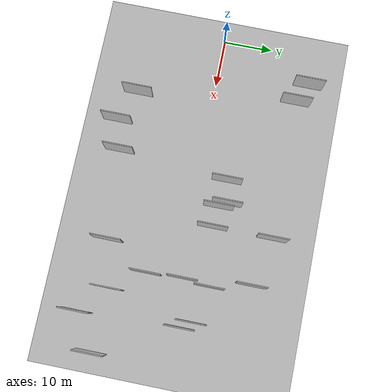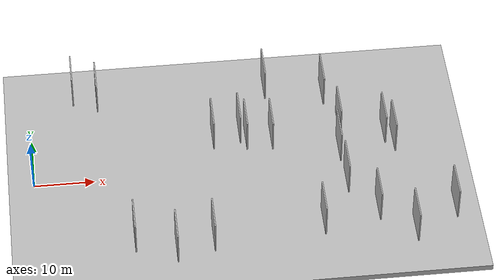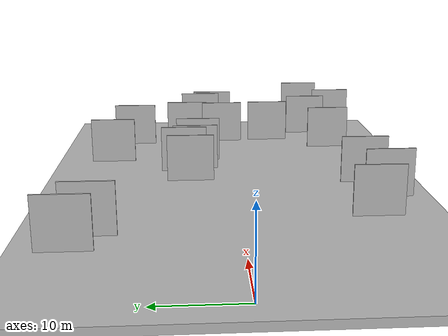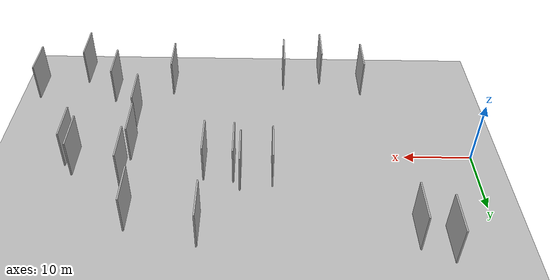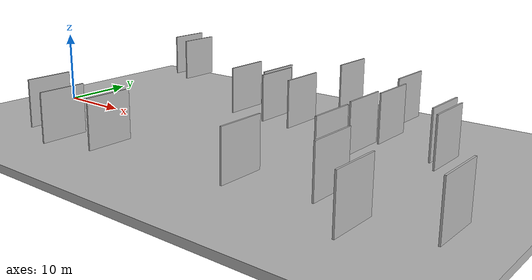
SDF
<?xml version="1.0" encoding="utf-8"?>

<sdf version="1.6">

   <world name="default">

      <gui fullscreen="0">

         <camera name="user_camera">

            <pose>-15 0 4.57585 0 0 0</pose>

            <view_controller>orbit</view_controller>

         </camera>

      </gui>

      <scene>

         <sky>

           <clouds>

             <speed>12</speed>

           </clouds>

         </sky>

         <ambient>0.4 0.4 0.4 1</ambient>

         <background>0.7 0.7 0.7 1</background>

         <shadows>1</shadows>

      </scene>

      <gravity>0 0 -9.8066</gravity>

      <magnetic_field>6e-06 2.3e-05 -4.2e-05</magnetic_field>

      <physics default="0" name="default_physics" type="ode">

         <ode>

            <solver>

               <type>quick</type>

               <iters>10</iters>

               <sor>1.0</sor>

               <use_dynamic_moi_rescaling>0</use_dynamic_moi_rescaling>

            </solver>

            <constraints>

               <cfm>0</cfm>

               <erp>0.2</erp>

               <contact_max_correcting_vel>100</contact_max_correcting_vel>

               <contact_surface_layer>0.001</contact_surface_layer>

            </constraints>

         </ode>

         <max_step_size>0.004</max_step_size>

         <real_time_factor>1</real_time_factor>

         <real_time_update_rate>250</real_time_update_rate>

      </physics>

      <light name="sun" type="directional">

         <cast_shadows>1</cast_shadows>

         <pose>0 0 10 0 0 0</pose>

         <diffuse>0.8 0.8 0.8 1</diffuse>

         <specular>0.2 0.2 0.2 1</specular>

         <attenuation>

            <range>1000</range>

            <constant>0.9</constant>

            <linear>0.01</linear>

            <quadratic>0.001</quadratic>

         </attenuation>

         <direction>-0.5 0.1 -0.9</direction>

      </light>

      <include>

         <name>ground_plane_1</name>

         <uri>model://HANNAS_ground_plane</uri>

         <pose>0 0 0  0 0 0</pose>

      </include>

      <include>

         <name>ground_plane_2</name>

         <uri>model://HANNAS_ground_plane</uri>

         <pose>100 0 0  0 0 0</pose>

      </include>

      <model name="HANNAS_wall_1">

         <static>1</static>

         <pose frame="">60.0736 2.5275 2.5 0.000000 0.000000 1.570796</pose>

         <link name="link">

            <pose frame="">0 0 3.00 0 0 0</pose>

            <collision name="collision">

               <geometry>

                  <box>

                     <size>6.00 0.2 6.00</size>

                  </box>

               </geometry>

               <max_contacts>10</max_contacts>

               <surface>

                  <contact>

                     <ode/>

                  </contact>

                  <bounce/>

                  <friction>

                     <torsional>

                        <ode/>

                     </torsional>

                     <ode/>

                  </friction>

               </surface>

            </collision>

            <visual name="visual">

               <cast_shadows>0</cast_shadows>

               <geometry>

                  <box>

                     <size>6.00 0.2 6.00</size>

                  </box>

               </geometry>

               <material>

                  <script>

                     <uri>model://HANNAS_wall/materials/scripts</uri>

                     <uri>model://HANNAS_wall/materials/textures</uri>

                     <name>vrc/HANNAS_wall</name>

                  </script>

               </material>

            </visual>

            <self_collide>0</self_collide>

            <enable_wind>0</enable_wind>

            <kinematic>0</kinematic>

         </link>

      </model>

      <model name="HANNAS_wall_2">

         <static>1</static>

         <pose frame="">28.2302 -16.2975 2.5 0.000000 0.000000 1.570796</pose>

         <link name="link">

            <pose frame="">0 0 3.00 0 0 0</pose>

            <collision name="collision">

               <geometry>

                  <box>

                     <size>6.00 0.2 6.00</size>

                  </box>

               </geometry>

               <max_contacts>10</max_contacts>

               <surface>

                  <contact>

                     <ode/>

                  </contact>

                  <bounce/>

                  <friction>

                     <torsional>

                        <ode/>

                     </torsional>

                     <ode/>

                  </friction>

               </surface>

            </collision>

            <visual name="visual">

               <cast_shadows>0</cast_shadows>

               <geometry>

                  <box>

                     <size>6.00 0.2 6.00</size>

                  </box>

               </geometry>

               <material>

                  <script>

                     <uri>model://HANNAS_wall/materials/scripts</uri>

                     <uri>model://HANNAS_wall/materials/textures</uri>

                     <name>vrc/HANNAS_wall</name>

                  </script>

               </material>

            </visual>

            <self_collide>0</self_collide>

            <enable_wind>0</enable_wind>

            <kinematic>0</kinematic>

         </link>

      </model>

      <model name="HANNAS_wall_3">

         <static>1</static>

         <pose frame="">34.6992 6.8848 2.5 0.000000 0.000000 1.570796</pose>

         <link name="link">

            <pose frame="">0 0 3.00 0 0 0</pose>

            <collision name="collision">

               <geometry>

                  <box>

                     <size>6.00 0.2 6.00</size>

                  </box>

               </geometry>

               <max_contacts>10</max_contacts>

               <surface>

                  <contact>

                     <ode/>

                  </contact>

                  <bounce/>

                  <friction>

                     <torsional>

                        <ode/>

                     </torsional>

                     <ode/>

                  </friction>

               </surface>

            </collision>

            <visual name="visual">

               <cast_shadows>0</cast_shadows>

               <geometry>

                  <box>

                     <size>6.00 0.2 6.00</size>

                  </box>

               </geometry>

               <material>

                  <script>

                     <uri>model://HANNAS_wall/materials/scripts</uri>

                     <uri>model://HANNAS_wall/materials/textures</uri>

                     <name>vrc/HANNAS_wall</name>

                  </script>

               </material>

            </visual>

            <self_collide>0</self_collide>

            <enable_wind>0</enable_wind>

            <kinematic>0</kinematic>

         </link>

      </model>

      <model name="HANNAS_wall_4">

         <static>1</static>

         <pose frame="">30.1752 5.9931 2.5 0.000000 0.000000 1.570796</pose>

         <link name="link">

            <pose frame="">0 0 3.00 0 0 0</pose>

            <collision name="collision">

               <geometry>

                  <box>

                     <size>6.00 0.2 6.00</size>

                  </box>

               </geometry>

               <max_contacts>10</max_contacts>

               <surface>

                  <contact>

                     <ode/>

                  </contact>

                  <bounce/>

                  <friction>

                     <torsional>

                        <ode/>

                     </torsional>

                     <ode/>

                  </friction>

               </surface>

            </collision>

            <visual name="visual">

               <cast_shadows>0</cast_shadows>

               <geometry>

                  <box>

                     <size>6.00 0.2 6.00</size>

                  </box>

               </geometry>

               <material>

                  <script>

                     <uri>model://HANNAS_wall/materials/scripts</uri>

                     <uri>model://HANNAS_wall/materials/textures</uri>

                     <name>vrc/HANNAS_wall</name>

                  </script>

               </material>

            </visual>

            <self_collide>0</self_collide>

            <enable_wind>0</enable_wind>

            <kinematic>0</kinematic>

         </link>

      </model>

      <model name="HANNAS_wall_5">

         <static>1</static>

         <pose frame="">67.8945 -13.1740 2.5 0.000000 0.000000 1.570796</pose>

         <link name="link">

            <pose frame="">0 0 3.00 0 0 0</pose>

            <collision name="collision">

               <geometry>

                  <box>

                     <size>6.00 0.2 6.00</size>

                  </box>

               </geometry>

               <max_contacts>10</max_contacts>

               <surface>

                  <contact>

                     <ode/>

                  </contact>

                  <bounce/>

                  <friction>

                     <torsional>

                        <ode/>

                     </torsional>

                     <ode/>

                  </friction>

               </surface>

            </collision>

            <visual name="visual">

               <cast_shadows>0</cast_shadows>

               <geometry>

                  <box>

                     <size>6.00 0.2 6.00</size>

                  </box>

               </geometry>

               <material>

                  <script>

                     <uri>model://HANNAS_wall/materials/scripts</uri>

                     <uri>model://HANNAS_wall/materials/textures</uri>

                     <name>vrc/HANNAS_wall</name>

                  </script>

               </material>

            </visual>

            <self_collide>0</self_collide>

            <enable_wind>0</enable_wind>

            <kinematic>0</kinematic>

         </link>

      </model>

      <model name="HANNAS_wall_6">

         <static>1</static>

         <pose frame="">11.4719 16.6021 2.5 0.000000 0.000000 1.570796</pose>

         <link name="link">

            <pose frame="">0 0 3.00 0 0 0</pose>

            <collision name="collision">

               <geometry>

                  <box>

                     <size>6.00 0.2 6.00</size>

                  </box>

               </geometry>

               <max_contacts>10</max_contacts>

               <surface>

                  <contact>

                     <ode/>

                  </contact>

                  <bounce/>

                  <friction>

                     <torsional>

                        <ode/>

                     </torsional>

                     <ode/>

                  </friction>

               </surface>

            </collision>

            <visual name="visual">

               <cast_shadows>0</cast_shadows>

               <geometry>

                  <box>

                     <size>6.00 0.2 6.00</size>

                  </box>

               </geometry>

               <material>

                  <script>

                     <uri>model://HANNAS_wall/materials/scripts</uri>

                     <uri>model://HANNAS_wall/materials/textures</uri>

                     <name>vrc/HANNAS_wall</name>

                  </script>

               </material>

            </visual>

            <self_collide>0</self_collide>

            <enable_wind>0</enable_wind>

            <kinematic>0</kinematic>

         </link>

      </model>

      <model name="HANNAS_wall_7">

         <static>1</static>

         <pose frame="">51.4426 6.5972 2.5 0.000000 0.000000 1.570796</pose>

         <link name="link">

            <pose frame="">0 0 3.00 0 0 0</pose>

            <collision name="collision">

               <geometry>

                  <box>

                     <size>6.00 0.2 6.00</size>

                  </box>

               </geometry>

               <max_contacts>10</max_contacts>

               <surface>

                  <contact>

                     <ode/>

                  </contact>

                  <bounce/>

                  <friction>

                     <torsional>

                        <ode/>

                     </torsional>

                     <ode/>

                  </friction>

               </surface>

            </collision>

            <visual name="visual">

               <cast_shadows>0</cast_shadows>

               <geometry>

                  <box>

                     <size>6.00 0.2 6.00</size>

                  </box>

               </geometry>

               <material>

                  <script>

                     <uri>model://HANNAS_wall/materials/scripts</uri>

                     <uri>model://HANNAS_wall/materials/textures</uri>

                     <name>vrc/HANNAS_wall</name>

                  </script>

               </material>

            </visual>

            <self_collide>0</self_collide>

            <enable_wind>0</enable_wind>

            <kinematic>0</kinematic>

         </link>

      </model>

      <model name="HANNAS_wall_8">

         <static>1</static>

         <pose frame="">58.6764 4.4714 2.5 0.000000 0.000000 1.570796</pose>

         <link name="link">

            <pose frame="">0 0 3.00 0 0 0</pose>

            <collision name="collision">

               <geometry>

                  <box>

                     <size>6.00 0.2 6.00</size>

                  </box>

               </geometry>

               <max_contacts>10</max_contacts>

               <surface>

                  <contact>

                     <ode/>

                  </contact>

                  <bounce/>

                  <friction>

                     <torsional>

                        <ode/>

                     </torsional>

                     <ode/>

                  </friction>

               </surface>

            </collision>

            <visual name="visual">

               <cast_shadows>0</cast_shadows>

               <geometry>

                  <box>

                     <size>6.00 0.2 6.00</size>

                  </box>

               </geometry>

               <material>

                  <script>

                     <uri>model://HANNAS_wall/materials/scripts</uri>

                     <uri>model://HANNAS_wall/materials/textures</uri>

                     <name>vrc/HANNAS_wall</name>

                  </script>

               </material>

            </visual>

            <self_collide>0</self_collide>

            <enable_wind>0</enable_wind>

            <kinematic>0</kinematic>

         </link>

      </model>

      <model name="HANNAS_wall_9">

         <static>1</static>

         <pose frame="">22.1503 -18.0386 2.5 0.000000 0.000000 1.570796</pose>

         <link name="link">

            <pose frame="">0 0 3.00 0 0 0</pose>

            <collision name="collision">

               <geometry>

                  <box>

                     <size>6.00 0.2 6.00</size>

                  </box>

               </geometry>

               <max_contacts>10</max_contacts>

               <surface>

                  <contact>

                     <ode/>

                  </contact>

                  <bounce/>

                  <friction>

                     <torsional>

                        <ode/>

                     </torsional>

                     <ode/>

                  </friction>

               </surface>

            </collision>

            <visual name="visual">

               <cast_shadows>0</cast_shadows>

               <geometry>

                  <box>

                     <size>6.00 0.2 6.00</size>

                  </box>

               </geometry>

               <material>

                  <script>

                     <uri>model://HANNAS_wall/materials/scripts</uri>

                     <uri>model://HANNAS_wall/materials/textures</uri>

                     <name>vrc/HANNAS_wall</name>

                  </script>

               </material>

            </visual>

            <self_collide>0</self_collide>

            <enable_wind>0</enable_wind>

            <kinematic>0</kinematic>

         </link>

      </model>

      <model name="HANNAS_wall_10">

         <static>1</static>

         <pose frame="">60.8233 -17.5623 2.5 0.000000 0.000000 1.570796</pose>

         <link name="link">

            <pose frame="">0 0 3.00 0 0 0</pose>

            <collision name="collision">

               <geometry>

                  <box>

                     <size>6.00 0.2 6.00</size>

                  </box>

               </geometry>

               <max_contacts>10</max_contacts>

               <surface>

                  <contact>

                     <ode/>

                  </contact>

                  <bounce/>

                  <friction>

                     <torsional>

                        <ode/>

                     </torsional>

                     <ode/>

                  </friction>

               </surface>

            </collision>

            <visual name="visual">

               <cast_shadows>0</cast_shadows>

               <geometry>

                  <box>

                     <size>6.00 0.2 6.00</size>

                  </box>

               </geometry>

               <material>

                  <script>

                     <uri>model://HANNAS_wall/materials/scripts</uri>

                     <uri>model://HANNAS_wall/materials/textures</uri>

                     <name>vrc/HANNAS_wall</name>

                  </script>

               </material>

            </visual>

            <self_collide>0</self_collide>

            <enable_wind>0</enable_wind>

            <kinematic>0</kinematic>

         </link>

      </model>

      <model name="HANNAS_wall_11">

         <static>1</static>

         <pose frame="">35.6608 5.3588 2.5 0.000000 0.000000 1.570796</pose>

         <link name="link">

            <pose frame="">0 0 3.00 0 0 0</pose>

            <collision name="collision">

               <geometry>

                  <box>

                     <size>6.00 0.2 6.00</size>

                  </box>

               </geometry>

               <max_contacts>10</max_contacts>

               <surface>

                  <contact>

                     <ode/>

                  </contact>

                  <bounce/>

                  <friction>

                     <torsional>

                        <ode/>

                     </torsional>

                     <ode/>

                  </friction>

               </surface>

            </collision>

            <visual name="visual">

               <cast_shadows>0</cast_shadows>

               <geometry>

                  <box>

                     <size>6.00 0.2 6.00</size>

                  </box>

               </geometry>

               <material>

                  <script>

                     <uri>model://HANNAS_wall/materials/scripts</uri>

                     <uri>model://HANNAS_wall/materials/textures</uri>

                     <name>vrc/HANNAS_wall</name>

                  </script>

               </material>

            </visual>

            <self_collide>0</self_collide>

            <enable_wind>0</enable_wind>

            <kinematic>0</kinematic>

         </link>

      </model>

      <model name="HANNAS_wall_12">

         <static>1</static>

         <pose frame="">51.1300 -5.9115 2.5 0.000000 0.000000 1.570796</pose>

         <link name="link">

            <pose frame="">0 0 3.00 0 0 0</pose>

            <collision name="collision">

               <geometry>

                  <box>

                     <size>6.00 0.2 6.00</size>

                  </box>

               </geometry>

               <max_contacts>10</max_contacts>

               <surface>

                  <contact>

                     <ode/>

                  </contact>

                  <bounce/>

                  <friction>

                     <torsional>

                        <ode/>

                     </torsional>

                     <ode/>

                  </friction>

               </surface>

            </collision>

            <visual name="visual">

               <cast_shadows>0</cast_shadows>

               <geometry>

                  <box>

                     <size>6.00 0.2 6.00</size>

                  </box>

               </geometry>

               <material>

                  <script>

                     <uri>model://HANNAS_wall/materials/scripts</uri>

                     <uri>model://HANNAS_wall/materials/textures</uri>

                     <name>vrc/HANNAS_wall</name>

                  </script>

               </material>

            </visual>

            <self_collide>0</self_collide>

            <enable_wind>0</enable_wind>

            <kinematic>0</kinematic>

         </link>

      </model>

      <model name="HANNAS_wall_13">

         <static>1</static>

         <pose frame="">50.7868 1.2137 2.5 0.000000 0.000000 1.570796</pose>

         <link name="link">

            <pose frame="">0 0 3.00 0 0 0</pose>

            <collision name="collision">

               <geometry>

                  <box>

                     <size>6.00 0.2 6.00</size>

                  </box>

               </geometry>

               <max_contacts>10</max_contacts>

               <surface>

                  <contact>

                     <ode/>

                  </contact>

                  <bounce/>

                  <friction>

                     <torsional>

                        <ode/>

                     </torsional>

                     <ode/>

                  </friction>

               </surface>

            </collision>

            <visual name="visual">

               <cast_shadows>0</cast_shadows>

               <geometry>

                  <box>

                     <size>6.00 0.2 6.00</size>

                  </box>

               </geometry>

               <material>

                  <script>

                     <uri>model://HANNAS_wall/materials/scripts</uri>

                     <uri>model://HANNAS_wall/materials/textures</uri>

                     <name>vrc/HANNAS_wall</name>

                  </script>

               </material>

            </visual>

            <self_collide>0</self_collide>

            <enable_wind>0</enable_wind>

            <kinematic>0</kinematic>

         </link>

      </model>

      <model name="HANNAS_wall_14">

         <static>1</static>

         <pose frame="">15.6409 -15.1926 2.5 0.000000 0.000000 1.570796</pose>

         <link name="link">

            <pose frame="">0 0 3.00 0 0 0</pose>

            <collision name="collision">

               <geometry>

                  <box>

                     <size>6.00 0.2 6.00</size>

                  </box>

               </geometry>

               <max_contacts>10</max_contacts>

               <surface>

                  <contact>

                     <ode/>

                  </contact>

                  <bounce/>

                  <friction>

                     <torsional>

                        <ode/>

                     </torsional>

                     <ode/>

                  </friction>

               </surface>

            </collision>

            <visual name="visual">

               <cast_shadows>0</cast_shadows>

               <geometry>

                  <box>

                     <size>6.00 0.2 6.00</size>

                  </box>

               </geometry>

               <material>

                  <script>

                     <uri>model://HANNAS_wall/materials/scripts</uri>

                     <uri>model://HANNAS_wall/materials/textures</uri>

                     <name>vrc/HANNAS_wall</name>

                  </script>

               </material>

            </visual>

            <self_collide>0</self_collide>

            <enable_wind>0</enable_wind>

            <kinematic>0</kinematic>

         </link>

      </model>

      <model name="HANNAS_wall_15">

         <static>1</static>

         <pose frame="">46.2174 -14.6597 2.5 0.000000 0.000000 1.570796</pose>

         <link name="link">

            <pose frame="">0 0 3.00 0 0 0</pose>

            <collision name="collision">

               <geometry>

                  <box>

                     <size>6.00 0.2 6.00</size>

                  </box>

               </geometry>

               <max_contacts>10</max_contacts>

               <surface>

                  <contact>

                     <ode/>

                  </contact>

                  <bounce/>

                  <friction>

                     <torsional>

                        <ode/>

                     </torsional>

                     <ode/>

                  </friction>

               </surface>

            </collision>

            <visual name="visual">

               <cast_shadows>0</cast_shadows>

               <geometry>

                  <box>

                     <size>6.00 0.2 6.00</size>

                  </box>

               </geometry>

               <material>

                  <script>

                     <uri>model://HANNAS_wall/materials/scripts</uri>

                     <uri>model://HANNAS_wall/materials/textures</uri>

                     <name>vrc/HANNAS_wall</name>

                  </script>

               </material>

            </visual>

            <self_collide>0</self_collide>

            <enable_wind>0</enable_wind>

            <kinematic>0</kinematic>

         </link>

      </model>

      <model name="HANNAS_wall_16">

         <static>1</static>

         <pose frame="">55.4254 -12.5003 2.5 0.000000 0.000000 1.570796</pose>

         <link name="link">

            <pose frame="">0 0 3.00 0 0 0</pose>

            <collision name="collision">

               <geometry>

                  <box>

                     <size>6.00 0.2 6.00</size>

                  </box>

               </geometry>

               <max_contacts>10</max_contacts>

               <surface>

                  <contact>

                     <ode/>

                  </contact>

                  <bounce/>

                  <friction>

                     <torsional>

                        <ode/>

                     </torsional>

                     <ode/>

                  </friction>

               </surface>

            </collision>

            <visual name="visual">

               <cast_shadows>0</cast_shadows>

               <geometry>

                  <box>

                     <size>6.00 0.2 6.00</size>

                  </box>

               </geometry>

               <material>

                  <script>

                     <uri>model://HANNAS_wall/materials/scripts</uri>

                     <uri>model://HANNAS_wall/materials/textures</uri>

                     <name>vrc/HANNAS_wall</name>

                  </script>

               </material>

            </visual>

            <self_collide>0</self_collide>

            <enable_wind>0</enable_wind>

            <kinematic>0</kinematic>

         </link>

      </model>

      <model name="HANNAS_wall_17">

         <static>1</static>

         <pose frame="">39.8846 4.9657 2.5 0.000000 0.000000 1.570796</pose>

         <link name="link">

            <pose frame="">0 0 3.00 0 0 0</pose>

            <collision name="collision">

               <geometry>

                  <box>

                     <size>6.00 0.2 6.00</size>

                  </box>

               </geometry>

               <max_contacts>10</max_contacts>

               <surface>

                  <contact>

                     <ode/>

                  </contact>

                  <bounce/>

                  <friction>

                     <torsional>

                        <ode/>

                     </torsional>

                     <ode/>

                  </friction>

               </surface>

            </collision>

            <visual name="visual">

               <cast_shadows>0</cast_shadows>

               <geometry>

                  <box>

                     <size>6.00 0.2 6.00</size>

                  </box>

               </geometry>

               <material>

                  <script>

                     <uri>model://HANNAS_wall/materials/scripts</uri>

                     <uri>model://HANNAS_wall/materials/textures</uri>

                     <name>vrc/HANNAS_wall</name>

                  </script>

               </material>

            </visual>

            <self_collide>0</self_collide>

            <enable_wind>0</enable_wind>

            <kinematic>0</kinematic>

         </link>

      </model>

      <model name="HANNAS_wall_18">

         <static>1</static>

         <pose frame="">49.5933 14.4614 2.5 0.000000 0.000000 1.570796</pose>

         <link name="link">

            <pose frame="">0 0 3.00 0 0 0</pose>

            <collision name="collision">

               <geometry>

                  <box>

                     <size>6.00 0.2 6.00</size>

                  </box>

               </geometry>

               <max_contacts>10</max_contacts>

               <surface>

                  <contact>

                     <ode/>

                  </contact>

                  <bounce/>

                  <friction>

                     <torsional>

                        <ode/>

                     </torsional>

                     <ode/>

                  </friction>

               </surface>

            </collision>

            <visual name="visual">

               <cast_shadows>0</cast_shadows>

               <geometry>

                  <box>

                     <size>6.00 0.2 6.00</size>

                  </box>

               </geometry>

               <material>

                  <script>

                     <uri>model://HANNAS_wall/materials/scripts</uri>

                     <uri>model://HANNAS_wall/materials/textures</uri>

                     <name>vrc/HANNAS_wall</name>

                  </script>

               </material>

            </visual>

            <self_collide>0</self_collide>

            <enable_wind>0</enable_wind>

            <kinematic>0</kinematic>

         </link>

      </model>

      <model name="HANNAS_wall_19">

         <static>1</static>

         <pose frame="">39.8959 16.8445 2.5 0.000000 0.000000 1.570796</pose>

         <link name="link">

            <pose frame="">0 0 3.00 0 0 0</pose>

            <collision name="collision">

               <geometry>

                  <box>

                     <size>6.00 0.2 6.00</size>

                  </box>

               </geometry>

               <max_contacts>10</max_contacts>

               <surface>

                  <contact>

                     <ode/>

                  </contact>

                  <bounce/>

                  <friction>

                     <torsional>

                        <ode/>

                     </torsional>

                     <ode/>

                  </friction>

               </surface>

            </collision>

            <visual name="visual">

               <cast_shadows>0</cast_shadows>

               <geometry>

                  <box>

                     <size>6.00 0.2 6.00</size>

                  </box>

               </geometry>

               <material>

                  <script>

                     <uri>model://HANNAS_wall/materials/scripts</uri>

                     <uri>model://HANNAS_wall/materials/textures</uri>

                     <name>vrc/HANNAS_wall</name>

                  </script>

               </material>

            </visual>

            <self_collide>0</self_collide>

            <enable_wind>0</enable_wind>

            <kinematic>0</kinematic>

         </link>

      </model>

      <model name="HANNAS_wall_20">

         <static>1</static>

         <pose frame="">7.4651 18.5317 2.5 0.000000 0.000000 1.570796</pose>

         <link name="link">

            <pose frame="">0 0 3.00 0 0 0</pose>

            <collision name="collision">

               <geometry>

                  <box>

                     <size>6.00 0.2 6.00</size>

                  </box>

               </geometry>

               <max_contacts>10</max_contacts>

               <surface>

                  <contact>

                     <ode/>

                  </contact>

                  <bounce/>

                  <friction>

                     <torsional>

                        <ode/>

                     </torsional>

                     <ode/>

                  </friction>

               </surface>

            </collision>

            <visual name="visual">

               <cast_shadows>0</cast_shadows>

               <geometry>

                  <box>

                     <size>6.00 0.2 6.00</size>

                  </box>

               </geometry>

               <material>

                  <script>

                     <uri>model://HANNAS_wall/materials/scripts</uri>

                     <uri>model://HANNAS_wall/materials/textures</uri>

                     <name>vrc/HANNAS_wall</name>

                  </script>

               </material>

            </visual>

            <self_collide>0</self_collide>

            <enable_wind>0</enable_wind>

            <kinematic>0</kinematic>

         </link>

      </model>

   </world>

</sdf>

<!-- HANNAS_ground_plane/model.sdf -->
<sdf version="1.4">
<model name="HANNAS_ground_plane">
  <static>true</static>
    <link name="link">
      <collision name="collision">
        <geometry>
          <plane>
            <normal>0 0 1</normal>
            <size>1000 1000</size>
          </plane>
        </geometry>
        <surface>
          <friction>
            <ode>
              <mu>100</mu>
              <mu2>50</mu2>
            </ode>
          </friction>
        </surface>
      </collision>
      <visual name="visual">
        <cast_shadows>false</cast_shadows>
        <geometry>
          <plane>
            <normal>0 0 1</normal>
            <size>1000 1000</size>
          </plane>
        </geometry>
        <material>
          <script>
            <uri>model://HANNAS_ground_plane/materials/scripts/HANNAS_ground_plane.material</uri>
	    <uri>model://HANNAS_ground_plane/materials/textures</uri>
            <name>HANNASGroundPlane/Image</name>
          </script>
        </material>
      </visual>
    </link>
  </model>
</sdf>
